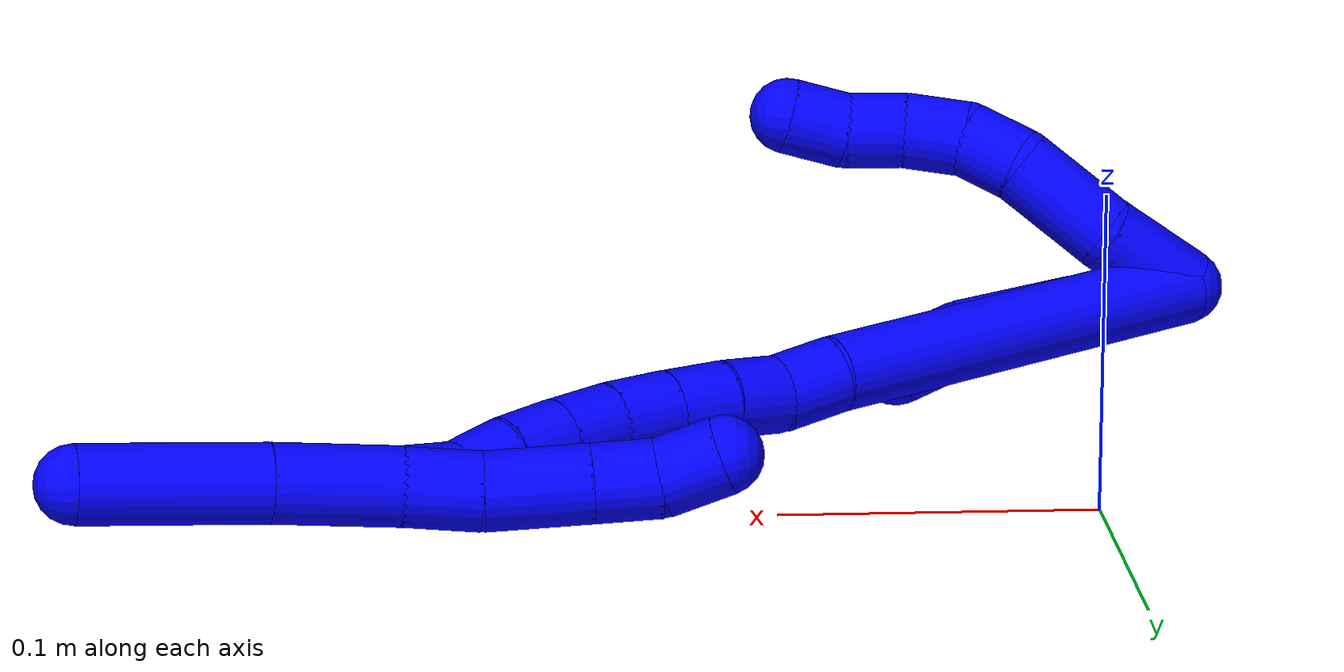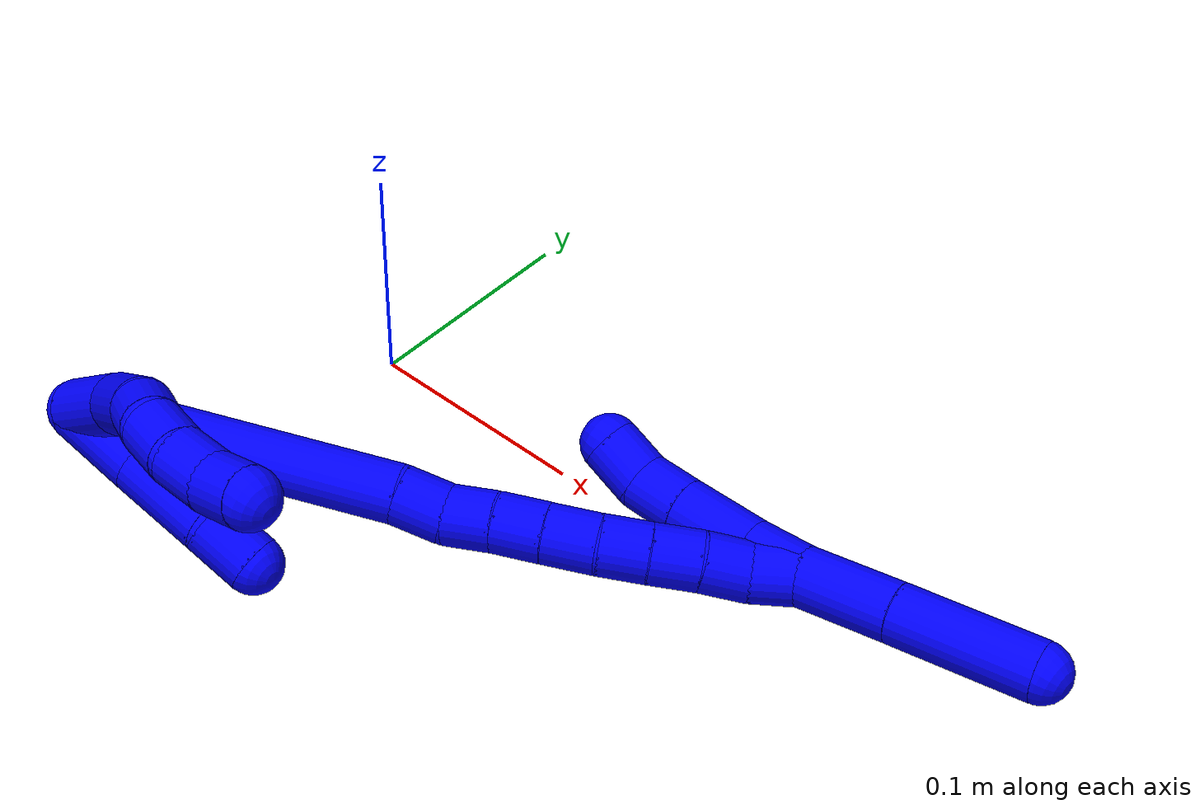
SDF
<sdf version="1.7">
 <world name="default">
  <model name="1">
   <static>0</static>
   <link name="1">
    <collision name="collision-cylinder-e_1_2_8">
     <pose>0.010154 -2.2e-05 -0.013263 3.13991 0.653395 3.13664</pose>
     <geometry><cylinder><radius>0.0125</radius><length>0.033408</length></cylinder></geometry>
     <surface>
      <friction><ode><mu>1.16</mu><mu2>1.16</mu2><slip1>0</slip1><slip2>0</slip2></ode></friction>
      <contact><ode><kp>1e+06</kp><kd>1</kd><max_vel>0</max_vel><min_depth>0.001</min_depth></ode></contact>
     </surface>
    </collision>
    <visual name="visual-cylinder-e_1_2_8">
     <pose>0.010154 -2.2e-05 -0.013263 3.13991 0.653395 3.13664</pose>
     <geometry><cylinder><radius>0.0125</radius><length>0.033408</length></cylinder></geometry>
     <material><ambient>0 0 1 1</ambient></material>
    </visual>
    <collision name="collision-cylinder-e_2_8_9">
     <pose>0.030593 -0.00555 -0.039935 2.75197 0.617085 2.03292</pose>
     <geometry><cylinder><radius>0.0125</radius><length>0.035546</length></cylinder></geometry>
     <surface>
      <friction><ode><mu>1.16</mu><mu2>1.16</mu2><slip1>0</slip1><slip2>0</slip2></ode></friction>
      <contact><ode><kp>1e+06</kp><kd>1</kd><max_vel>0</max_vel><min_depth>0.001</min_depth></ode></contact>
     </surface>
    </collision>
    <visual name="visual-cylinder-e_2_8_9">
     <pose>0.030593 -0.00555 -0.039935 2.75197 0.617085 2.03292</pose>
     <geometry><cylinder><radius>0.0125</radius><length>0.035546</length></cylinder></geometry>
     <material><ambient>0 0 1 1</ambient></material>
    </visual>
    <collision name="collision-cylinder-e_3_9_10">
     <pose>0.04416 -0.015522 -0.061778 2.65465 0.331338 1.18491</pose>
     <geometry><cylinder><radius>0.0125</radius><length>0.020185</length></cylinder></geometry>
     <surface>
      <friction><ode><mu>1.16</mu><mu2>1.16</mu2><slip1>0</slip1><slip2>0</slip2></ode></friction>
      <contact><ode><kp>1e+06</kp><kd>1</kd><max_vel>0</max_vel><min_depth>0.001</min_depth></ode></contact>
     </surface>
    </collision>
    <visual name="visual-cylinder-e_3_9_10">
     <pose>0.04416 -0.015522 -0.061778 2.65465 0.331338 1.18491</pose>
     <geometry><cylinder><radius>0.0125</radius><length>0.020185</length></cylinder></geometry>
     <material><ambient>0 0 1 1</ambient></material>
    </visual>
    <collision name="collision-cylinder-e_4_10_11">
     <pose>0.048526 -0.022333 -0.080315 2.91348 0.10402 0.853071</pose>
     <geometry><cylinder><radius>0.0125</radius><length>0.020855</length></cylinder></geometry>
     <surface>
      <friction><ode><mu>1.16</mu><mu2>1.16</mu2><slip1>0</slip1><slip2>0</slip2></ode></friction>
      <contact><ode><kp>1e+06</kp><kd>1</kd><max_vel>0</max_vel><min_depth>0.001</min_depth></ode></contact>
     </surface>
    </collision>
    <visual name="visual-cylinder-e_4_10_11">
     <pose>0.048526 -0.022333 -0.080315 2.91348 0.10402 0.853071</pose>
     <geometry><cylinder><radius>0.0125</radius><length>0.020855</length></cylinder></geometry>
     <material><ambient>0 0 1 1</ambient></material>
    </visual>
    <collision name="collision-cylinder-e_5_11_12">
     <pose>0.049992 -0.024627 -0.100413 -3.13648 0.038357 -2.87679</pose>
     <geometry><cylinder><radius>0.0125</radius><length>0.020006</length></cylinder></geometry>
     <surface>
      <friction><ode><mu>1.16</mu><mu2>1.16</mu2><slip1>0</slip1><slip2>0</slip2></ode></friction>
      <contact><ode><kp>1e+06</kp><kd>1</kd><max_vel>0</max_vel><min_depth>0.001</min_depth></ode></contact>
     </surface>
    </collision>
    <visual name="visual-cylinder-e_5_11_12">
     <pose>0.049992 -0.024627 -0.100413 -3.13648 0.038357 -2.87679</pose>
     <geometry><cylinder><radius>0.0125</radius><length>0.020006</length></cylinder></geometry>
     <material><ambient>0 0 1 1</ambient></material>
    </visual>
    <collision name="collision-cylinder-e_6_12_6">
     <pose>0.053369 -0.02475 -0.119949 3.12335 0.303952 3.02261</pose>
     <geometry><cylinder><radius>0.0125</radius><length>0.02</length></cylinder></geometry>
     <surface>
      <friction><ode><mu>1.16</mu><mu2>1.16</mu2><slip1>0</slip1><slip2>0</slip2></ode></friction>
      <contact><ode><kp>1e+06</kp><kd>1</kd><max_vel>0</max_vel><min_depth>0.001</min_depth></ode></contact>
     </surface>
    </collision>
    <visual name="visual-cylinder-e_6_12_6">
     <pose>0.053369 -0.02475 -0.119949 3.12335 0.303952 3.02261</pose>
     <geometry><cylinder><radius>0.0125</radius><length>0.02</length></cylinder></geometry>
     <material><ambient>0 0 1 1</ambient></material>
    </visual>
    <collision name="collision-cylinder-e_1_2_13">
     <pose>-0.003343 0.001472 -0.017881 -3.05945 -0.184245 2.30454</pose>
     <geometry><cylinder><radius>0.0125</radius><length>0.0365</length></cylinder></geometry>
     <surface>
      <friction><ode><mu>1.16</mu><mu2>1.16</mu2><slip1>0</slip1><slip2>0</slip2></ode></friction>
      <contact><ode><kp>1e+06</kp><kd>1</kd><max_vel>0</max_vel><min_depth>0.001</min_depth></ode></contact>
     </surface>
    </collision>
    <visual name="visual-cylinder-e_1_2_13">
     <pose>-0.003343 0.001472 -0.017881 -3.05945 -0.184245 2.30454</pose>
     <geometry><cylinder><radius>0.0125</radius><length>0.0365</length></cylinder></geometry>
     <material><ambient>0 0 1 1</ambient></material>
    </visual>
    <collision name="collision-cylinder-e_2_13_14">
     <pose>-0.009776 0.004515 -0.055322 -3.06144 -0.156161 2.19436</pose>
     <geometry><cylinder><radius>0.0125</radius><length>0.03973</length></cylinder></geometry>
     <surface>
      <friction><ode><mu>1.16</mu><mu2>1.16</mu2><slip1>0</slip1><slip2>0</slip2></ode></friction>
      <contact><ode><kp>1e+06</kp><kd>1</kd><max_vel>0</max_vel><min_depth>0.001</min_depth></ode></contact>
     </surface>
    </collision>
    <visual name="visual-cylinder-e_2_13_14">
     <pose>-0.009776 0.004515 -0.055322 -3.06144 -0.156161 2.19436</pose>
     <geometry><cylinder><radius>0.0125</radius><length>0.03973</length></cylinder></geometry>
     <material><ambient>0 0 1 1</ambient></material>
    </visual>
    <collision name="collision-cylinder-e_3_14_5">
     <pose>-0.016782 0.008408 -0.085861 -2.93323 -0.335729 2.0359</pose>
     <geometry><cylinder><radius>0.0125</radius><length>0.02377</length></cylinder></geometry>
     <surface>
      <friction><ode><mu>1.16</mu><mu2>1.16</mu2><slip1>0</slip1><slip2>0</slip2></ode></friction>
      <contact><ode><kp>1e+06</kp><kd>1</kd><max_vel>0</max_vel><min_depth>0.001</min_depth></ode></contact>
     </surface>
    </collision>
    <visual name="visual-cylinder-e_3_14_5">
     <pose>-0.016782 0.008408 -0.085861 -2.93323 -0.335729 2.0359</pose>
     <geometry><cylinder><radius>0.0125</radius><length>0.02377</length></cylinder></geometry>
     <material><ambient>0 0 1 1</ambient></material>
    </visual>
    <collision name="collision-cylinder-e_1_2_15">
     <pose>0.001128 0.032516 -0.059985 -2.64487 0.016531 -0.065163</pose>
     <geometry><cylinder><radius>0.0125</radius><length>0.136481</length></cylinder></geometry>
     <surface>
      <friction><ode><mu>1.16</mu><mu2>1.16</mu2><slip1>0</slip1><slip2>0</slip2></ode></friction>
      <contact><ode><kp>1e+06</kp><kd>1</kd><max_vel>0</max_vel><min_depth>0.001</min_depth></ode></contact>
     </surface>
    </collision>
    <visual name="visual-cylinder-e_1_2_15">
     <pose>0.001128 0.032516 -0.059985 -2.64487 0.016531 -0.065163</pose>
     <geometry><cylinder><radius>0.0125</radius><length>0.136481</length></cylinder></geometry>
     <material><ambient>0 0 1 1</ambient></material>
    </visual>
    <collision name="collision-cylinder-e_2_15_16">
     <pose>0.001126 0.069442 -0.129471 -2.70691 -0.107491 0.477914</pose>
     <geometry><cylinder><radius>0.0125</radius><length>0.02107</length></cylinder></geometry>
     <surface>
      <friction><ode><mu>1.16</mu><mu2>1.16</mu2><slip1>0</slip1><slip2>0</slip2></ode></friction>
      <contact><ode><kp>1e+06</kp><kd>1</kd><max_vel>0</max_vel><min_depth>0.001</min_depth></ode></contact>
     </surface>
    </collision>
    <visual name="visual-cylinder-e_2_15_16">
     <pose>0.001126 0.069442 -0.129471 -2.70691 -0.107491 0.477914</pose>
     <geometry><cylinder><radius>0.0125</radius><length>0.02107</length></cylinder></geometry>
     <material><ambient>0 0 1 1</ambient></material>
    </visual>
    <collision name="collision-cylinder-e_3_16_17">
     <pose>0.001583 0.078564 -0.147709 -2.64716 0.158537 -0.60986</pose>
     <geometry><cylinder><radius>0.0125</radius><length>0.020106</length></cylinder></geometry>
     <surface>
      <friction><ode><mu>1.16</mu><mu2>1.16</mu2><slip1>0</slip1><slip2>0</slip2></ode></friction>
      <contact><ode><kp>1e+06</kp><kd>1</kd><max_vel>0</max_vel><min_depth>0.001</min_depth></ode></contact>
     </surface>
    </collision>
    <visual name="visual-cylinder-e_3_16_17">
     <pose>0.001583 0.078564 -0.147709 -2.64716 0.158537 -0.60986</pose>
     <geometry><cylinder><radius>0.0125</radius><length>0.020106</length></cylinder></geometry>
     <material><ambient>0 0 1 1</ambient></material>
    </visual>
    <collision name="collision-cylinder-e_4_17_18">
     <pose>0.003983 0.087984 -0.165449 -2.65958 0.07989 -0.322397</pose>
     <geometry><cylinder><radius>0.0125</radius><length>0.020384</length></cylinder></geometry>
     <surface>
      <friction><ode><mu>1.16</mu><mu2>1.16</mu2><slip1>0</slip1><slip2>0</slip2></ode></friction>
      <contact><ode><kp>1e+06</kp><kd>1</kd><max_vel>0</max_vel><min_depth>0.001</min_depth></ode></contact>
     </surface>
    </collision>
    <visual name="visual-cylinder-e_4_17_18">
     <pose>0.003983 0.087984 -0.165449 -2.65958 0.07989 -0.322397</pose>
     <geometry><cylinder><radius>0.0125</radius><length>0.020384</length></cylinder></geometry>
     <material><ambient>0 0 1 1</ambient></material>
    </visual>
    <collision name="collision-cylinder-e_5_18_19">
     <pose>0.005445 0.097984 -0.18372 -2.62291 0.060726 -0.227964</pose>
     <geometry><cylinder><radius>0.0125</radius><length>0.021383</length></cylinder></geometry>
     <surface>
      <friction><ode><mu>1.16</mu><mu2>1.16</mu2><slip1>0</slip1><slip2>0</slip2></ode></friction>
      <contact><ode><kp>1e+06</kp><kd>1</kd><max_vel>0</max_vel><min_depth>0.001</min_depth></ode></contact>
     </surface>
    </collision>
    <visual name="visual-cylinder-e_5_18_19">
     <pose>0.005445 0.097984 -0.18372 -2.62291 0.060726 -0.227964</pose>
     <geometry><cylinder><radius>0.0125</radius><length>0.021383</length></cylinder></geometry>
     <material><ambient>0 0 1 1</ambient></material>
    </visual>
    <collision name="collision-cylinder-e_6_19_20">
     <pose>0.006361 0.109059 -0.201166 -2.52591 0.02663 -0.083712</pose>
     <geometry><cylinder><radius>0.0125</radius><length>0.020042</length></cylinder></geometry>
     <surface>
      <friction><ode><mu>1.16</mu><mu2>1.16</mu2><slip1>0</slip1><slip2>0</slip2></ode></friction>
      <contact><ode><kp>1e+06</kp><kd>1</kd><max_vel>0</max_vel><min_depth>0.001</min_depth></ode></contact>
     </surface>
    </collision>
    <visual name="visual-cylinder-e_6_19_20">
     <pose>0.006361 0.109059 -0.201166 -2.52591 0.02663 -0.083712</pose>
     <geometry><cylinder><radius>0.0125</radius><length>0.020042</length></cylinder></geometry>
     <material><ambient>0 0 1 1</ambient></material>
    </visual>
    <collision name="collision-cylinder-e_7_20_21">
     <pose>0.006708 0.121075 -0.217314 -2.47815 0.007911 -0.022966</pose>
     <geometry><cylinder><radius>0.0125</radius><length>0.020234</length></cylinder></geometry>
     <surface>
      <friction><ode><mu>1.16</mu><mu2>1.16</mu2><slip1>0</slip1><slip2>0</slip2></ode></friction>
      <contact><ode><kp>1e+06</kp><kd>1</kd><max_vel>0</max_vel><min_depth>0.001</min_depth></ode></contact>
     </surface>
    </collision>
    <visual name="visual-cylinder-e_7_20_21">
     <pose>0.006708 0.121075 -0.217314 -2.47815 0.007911 -0.022966</pose>
     <geometry><cylinder><radius>0.0125</radius><length>0.020234</length></cylinder></geometry>
     <material><ambient>0 0 1 1</ambient></material>
    </visual>
    <collision name="collision-cylinder-e_8_21_22">
     <pose>0.005782 0.133655 -0.232968 -2.45087 -0.100613 0.278083</pose>
     <geometry><cylinder><radius>0.0125</radius><length>0.020035</length></cylinder></geometry>
     <surface>
      <friction><ode><mu>1.16</mu><mu2>1.16</mu2><slip1>0</slip1><slip2>0</slip2></ode></friction>
      <contact><ode><kp>1e+06</kp><kd>1</kd><max_vel>0</max_vel><min_depth>0.001</min_depth></ode></contact>
     </surface>
    </collision>
    <visual name="visual-cylinder-e_8_21_22">
     <pose>0.005782 0.133655 -0.232968 -2.45087 -0.100613 0.278083</pose>
     <geometry><cylinder><radius>0.0125</radius><length>0.020035</length></cylinder></geometry>
     <material><ambient>0 0 1 1</ambient></material>
    </visual>
    <collision name="collision-cylinder-e_9_22_1">
     <pose>0.006831 0.145375 -0.248992 -2.56962 0.204322 -0.670939</pose>
     <geometry><cylinder><radius>0.0125</radius><length>0.020265</length></cylinder></geometry>
     <surface>
      <friction><ode><mu>1.16</mu><mu2>1.16</mu2><slip1>0</slip1><slip2>0</slip2></ode></friction>
      <contact><ode><kp>1e+06</kp><kd>1</kd><max_vel>0</max_vel><min_depth>0.001</min_depth></ode></contact>
     </surface>
    </collision>
    <visual name="visual-cylinder-e_9_22_1">
     <pose>0.006831 0.145375 -0.248992 -2.56962 0.204322 -0.670939</pose>
     <geometry><cylinder><radius>0.0125</radius><length>0.020265</length></cylinder></geometry>
     <material><ambient>0 0 1 1</ambient></material>
    </visual>
    <collision name="collision-cylinder-e_1_1_23">
     <pose>0.011875 0.15402 -0.277187 -2.97811 0.147411 -1.46711</pose>
     <geometry><cylinder><radius>0.0125</radius><length>0.040682</length></cylinder></geometry>
     <surface>
      <friction><ode><mu>1.16</mu><mu2>1.16</mu2><slip1>0</slip1><slip2>0</slip2></ode></friction>
      <contact><ode><kp>1e+06</kp><kd>1</kd><max_vel>0</max_vel><min_depth>0.001</min_depth></ode></contact>
     </surface>
    </collision>
    <visual name="visual-cylinder-e_1_1_23">
     <pose>0.011875 0.15402 -0.277187 -2.97811 0.147411 -1.46711</pose>
     <geometry><cylinder><radius>0.0125</radius><length>0.040682</length></cylinder></geometry>
     <material><ambient>0 0 1 1</ambient></material>
    </visual>
    <collision name="collision-cylinder-e_2_23_4">
     <pose>0.018392 0.162606 -0.326004 -2.96022 0.119269 -1.16195</pose>
     <geometry><cylinder><radius>0.0125</radius><length>0.059318</length></cylinder></geometry>
     <surface>
      <friction><ode><mu>1.16</mu><mu2>1.16</mu2><slip1>0</slip1><slip2>0</slip2></ode></friction>
      <contact><ode><kp>1e+06</kp><kd>1</kd><max_vel>0</max_vel><min_depth>0.001</min_depth></ode></contact>
     </surface>
    </collision>
    <visual name="visual-cylinder-e_2_23_4">
     <pose>0.018392 0.162606 -0.326004 -2.96022 0.119269 -1.16195</pose>
     <geometry><cylinder><radius>0.0125</radius><length>0.059318</length></cylinder></geometry>
     <material><ambient>0 0 1 1</ambient></material>
    </visual>
    <collision name="collision-cylinder-e_1_1_24">
     <pose>0.007339 0.150397 -0.245183 0.028659 -0.126708 -0.001818</pose>
     <geometry><cylinder><radius>0.0125</radius><length>0.02451</length></cylinder></geometry>
     <surface>
      <friction><ode><mu>1.16</mu><mu2>1.16</mu2><slip1>0</slip1><slip2>0</slip2></ode></friction>
      <contact><ode><kp>1e+06</kp><kd>1</kd><max_vel>0</max_vel><min_depth>0.001</min_depth></ode></contact>
     </surface>
    </collision>
    <visual name="visual-cylinder-e_1_1_24">
     <pose>0.007339 0.150397 -0.245183 0.028659 -0.126708 -0.001818</pose>
     <geometry><cylinder><radius>0.0125</radius><length>0.02451</length></cylinder></geometry>
     <material><ambient>0 0 1 1</ambient></material>
    </visual>
    <collision name="collision-cylinder-e_2_24_25">
     <pose>0.005781 0.148694 -0.216282 0.080677 -0.000536 -2.2e-05</pose>
     <geometry><cylinder><radius>0.0125</radius><length>0.033607</length></cylinder></geometry>
     <surface>
      <friction><ode><mu>1.16</mu><mu2>1.16</mu2><slip1>0</slip1><slip2>0</slip2></ode></friction>
      <contact><ode><kp>1e+06</kp><kd>1</kd><max_vel>0</max_vel><min_depth>0.001</min_depth></ode></contact>
     </surface>
    </collision>
    <visual name="visual-cylinder-e_2_24_25">
     <pose>0.005781 0.148694 -0.216282 0.080677 -0.000536 -2.2e-05</pose>
     <geometry><cylinder><radius>0.0125</radius><length>0.033607</length></cylinder></geometry>
     <material><ambient>0 0 1 1</ambient></material>
    </visual>
    <collision name="collision-cylinder-e_3_25_26">
     <pose>0.005883 0.146667 -0.188999 0.063798 0.010476 0.000334</pose>
     <geometry><cylinder><radius>0.0125</radius><length>0.021113</length></cylinder></geometry>
     <surface>
      <friction><ode><mu>1.16</mu><mu2>1.16</mu2><slip1>0</slip1><slip2>0</slip2></ode></friction>
      <contact><ode><kp>1e+06</kp><kd>1</kd><max_vel>0</max_vel><min_depth>0.001</min_depth></ode></contact>
     </surface>
    </collision>
    <visual name="visual-cylinder-e_3_25_26">
     <pose>0.005883 0.146667 -0.188999 0.063798 0.010476 0.000334</pose>
     <geometry><cylinder><radius>0.0125</radius><length>0.021113</length></cylinder></geometry>
     <material><ambient>0 0 1 1</ambient></material>
    </visual>
    <collision name="collision-cylinder-e_4_26_3">
     <pose>0.009436 0.145968 -0.168667 0.002676 0.337908 0.000456</pose>
     <geometry><cylinder><radius>0.0125</radius><length>0.02077</length></cylinder></geometry>
     <surface>
      <friction><ode><mu>1.16</mu><mu2>1.16</mu2><slip1>0</slip1><slip2>0</slip2></ode></friction>
      <contact><ode><kp>1e+06</kp><kd>1</kd><max_vel>0</max_vel><min_depth>0.001</min_depth></ode></contact>
     </surface>
    </collision>
    <visual name="visual-cylinder-e_4_26_3">
     <pose>0.009436 0.145968 -0.168667 0.002676 0.337908 0.000456</pose>
     <geometry><cylinder><radius>0.0125</radius><length>0.02077</length></cylinder></geometry>
     <material><ambient>0 0 1 1</ambient></material>
    </visual>
    <collision name="collision-sphere-3">
     <pose>0.012879 0.145942 -0.158869 0 -0 0</pose>
     <geometry><sphere><radius>0.0125</radius></sphere></geometry>
     <surface>
      <friction><ode><mu>1.16</mu><mu2>1.16</mu2><slip1>0</slip1><slip2>0</slip2></ode></friction>
      <contact><ode><kp>1e+06</kp><kd>1</kd><max_vel>0</max_vel><min_depth>0.001</min_depth></ode></contact>
     </surface>
    </collision>
    <visual name="visual-sphere-3">
     <pose>0.012879 0.145942 -0.158869 0 -0 0</pose>
     <geometry><sphere><radius>0.0125</radius></sphere></geometry>
     <material><ambient>0 0 1 1</ambient></material>
    </visual>
    <collision name="collision-sphere-26">
     <pose>0.005993 0.145994 -0.178465 0 -0 0</pose>
     <geometry><sphere><radius>0.0125</radius></sphere></geometry>
     <surface>
      <friction><ode><mu>1.16</mu><mu2>1.16</mu2><slip1>0</slip1><slip2>0</slip2></ode></friction>
      <contact><ode><kp>1e+06</kp><kd>1</kd><max_vel>0</max_vel><min_depth>0.001</min_depth></ode></contact>
     </surface>
    </collision>
    <visual name="visual-sphere-26">
     <pose>0.005993 0.145994 -0.178465 0 -0 0</pose>
     <geometry><sphere><radius>0.0125</radius></sphere></geometry>
     <material><ambient>0 0 1 1</ambient></material>
    </visual>
    <collision name="collision-sphere-25">
     <pose>0.005772 0.14734 -0.199534 0 -0 0</pose>
     <geometry><sphere><radius>0.0125</radius></sphere></geometry>
     <surface>
      <friction><ode><mu>1.16</mu><mu2>1.16</mu2><slip1>0</slip1><slip2>0</slip2></ode></friction>
      <contact><ode><kp>1e+06</kp><kd>1</kd><max_vel>0</max_vel><min_depth>0.001</min_depth></ode></contact>
     </surface>
    </collision>
    <visual name="visual-sphere-25">
     <pose>0.005772 0.14734 -0.199534 0 -0 0</pose>
     <geometry><sphere><radius>0.0125</radius></sphere></geometry>
     <material><ambient>0 0 1 1</ambient></material>
    </visual>
    <collision name="collision-sphere-24">
     <pose>0.00579 0.150049 -0.233031 0 -0 0</pose>
     <geometry><sphere><radius>0.0125</radius></sphere></geometry>
     <surface>
      <friction><ode><mu>1.16</mu><mu2>1.16</mu2><slip1>0</slip1><slip2>0</slip2></ode></friction>
      <contact><ode><kp>1e+06</kp><kd>1</kd><max_vel>0</max_vel><min_depth>0.001</min_depth></ode></contact>
     </surface>
    </collision>
    <visual name="visual-sphere-24">
     <pose>0.00579 0.150049 -0.233031 0 -0 0</pose>
     <geometry><sphere><radius>0.0125</radius></sphere></geometry>
     <material><ambient>0 0 1 1</ambient></material>
    </visual>
    <collision name="collision-sphere-4">
     <pose>0.021921 0.167918 -0.354969 0 -0 0</pose>
     <geometry><sphere><radius>0.0125</radius></sphere></geometry>
     <surface>
      <friction><ode><mu>1.16</mu><mu2>1.16</mu2><slip1>0</slip1><slip2>0</slip2></ode></friction>
      <contact><ode><kp>1e+06</kp><kd>1</kd><max_vel>0</max_vel><min_depth>0.001</min_depth></ode></contact>
     </surface>
    </collision>
    <visual name="visual-sphere-4">
     <pose>0.021921 0.167918 -0.354969 0 -0 0</pose>
     <geometry><sphere><radius>0.0125</radius></sphere></geometry>
     <material><ambient>0 0 1 1</ambient></material>
    </visual>
    <collision name="collision-sphere-23">
     <pose>0.014863 0.157295 -0.297039 0 -0 0</pose>
     <geometry><sphere><radius>0.0125</radius></sphere></geometry>
     <surface>
      <friction><ode><mu>1.16</mu><mu2>1.16</mu2><slip1>0</slip1><slip2>0</slip2></ode></friction>
      <contact><ode><kp>1e+06</kp><kd>1</kd><max_vel>0</max_vel><min_depth>0.001</min_depth></ode></contact>
     </surface>
    </collision>
    <visual name="visual-sphere-23">
     <pose>0.014863 0.157295 -0.297039 0 -0 0</pose>
     <geometry><sphere><radius>0.0125</radius></sphere></geometry>
     <material><ambient>0 0 1 1</ambient></material>
    </visual>
    <collision name="collision-sphere-1">
     <pose>0.008887 0.150745 -0.257335 0 -0 0</pose>
     <geometry><sphere><radius>0.0125</radius></sphere></geometry>
     <surface>
      <friction><ode><mu>1.16</mu><mu2>1.16</mu2><slip1>0</slip1><slip2>0</slip2></ode></friction>
      <contact><ode><kp>1e+06</kp><kd>1</kd><max_vel>0</max_vel><min_depth>0.001</min_depth></ode></contact>
     </surface>
    </collision>
    <visual name="visual-sphere-1">
     <pose>0.008887 0.150745 -0.257335 0 -0 0</pose>
     <geometry><sphere><radius>0.0125</radius></sphere></geometry>
     <material><ambient>0 0 1 1</ambient></material>
    </visual>
    <collision name="collision-sphere-22">
     <pose>0.004776 0.140005 -0.24065 0 -0 0</pose>
     <geometry><sphere><radius>0.0125</radius></sphere></geometry>
     <surface>
      <friction><ode><mu>1.16</mu><mu2>1.16</mu2><slip1>0</slip1><slip2>0</slip2></ode></friction>
      <contact><ode><kp>1e+06</kp><kd>1</kd><max_vel>0</max_vel><min_depth>0.001</min_depth></ode></contact>
     </surface>
    </collision>
    <visual name="visual-sphere-22">
     <pose>0.004776 0.140005 -0.24065 0 -0 0</pose>
     <geometry><sphere><radius>0.0125</radius></sphere></geometry>
     <material><ambient>0 0 1 1</ambient></material>
    </visual>
    <collision name="collision-sphere-21">
     <pose>0.006788 0.127305 -0.225285 0 -0 0</pose>
     <geometry><sphere><radius>0.0125</radius></sphere></geometry>
     <surface>
      <friction><ode><mu>1.16</mu><mu2>1.16</mu2><slip1>0</slip1><slip2>0</slip2></ode></friction>
      <contact><ode><kp>1e+06</kp><kd>1</kd><max_vel>0</max_vel><min_depth>0.001</min_depth></ode></contact>
     </surface>
    </collision>
    <visual name="visual-sphere-21">
     <pose>0.006788 0.127305 -0.225285 0 -0 0</pose>
     <geometry><sphere><radius>0.0125</radius></sphere></geometry>
     <material><ambient>0 0 1 1</ambient></material>
    </visual>
    <collision name="collision-sphere-12">
     <pose>0.050376 -0.024576 -0.110409 0 -0 0</pose>
     <geometry><sphere><radius>0.0125</radius></sphere></geometry>
     <surface>
      <friction><ode><mu>1.16</mu><mu2>1.16</mu2><slip1>0</slip1><slip2>0</slip2></ode></friction>
      <contact><ode><kp>1e+06</kp><kd>1</kd><max_vel>0</max_vel><min_depth>0.001</min_depth></ode></contact>
     </surface>
    </collision>
    <visual name="visual-sphere-12">
     <pose>0.050376 -0.024576 -0.110409 0 -0 0</pose>
     <geometry><sphere><radius>0.0125</radius></sphere></geometry>
     <material><ambient>0 0 1 1</ambient></material>
    </visual>
    <collision name="collision-sphere-11">
     <pose>0.049609 -0.024678 -0.090417 0 -0 0</pose>
     <geometry><sphere><radius>0.0125</radius></sphere></geometry>
     <surface>
      <friction><ode><mu>1.16</mu><mu2>1.16</mu2><slip1>0</slip1><slip2>0</slip2></ode></friction>
      <contact><ode><kp>1e+06</kp><kd>1</kd><max_vel>0</max_vel><min_depth>0.001</min_depth></ode></contact>
     </surface>
    </collision>
    <visual name="visual-sphere-11">
     <pose>0.049609 -0.024678 -0.090417 0 -0 0</pose>
     <geometry><sphere><radius>0.0125</radius></sphere></geometry>
     <material><ambient>0 0 1 1</ambient></material>
    </visual>
    <collision name="collision-sphere-10">
     <pose>0.047443 -0.019988 -0.070212 0 -0 0</pose>
     <geometry><sphere><radius>0.0125</radius></sphere></geometry>
     <surface>
      <friction><ode><mu>1.16</mu><mu2>1.16</mu2><slip1>0</slip1><slip2>0</slip2></ode></friction>
      <contact><ode><kp>1e+06</kp><kd>1</kd><max_vel>0</max_vel><min_depth>0.001</min_depth></ode></contact>
     </surface>
    </collision>
    <visual name="visual-sphere-10">
     <pose>0.047443 -0.019988 -0.070212 0 -0 0</pose>
     <geometry><sphere><radius>0.0125</radius></sphere></geometry>
     <material><ambient>0 0 1 1</ambient></material>
    </visual>
    <collision name="collision-sphere-9">
     <pose>0.040877 -0.011056 -0.053344 0 -0 0</pose>
     <geometry><sphere><radius>0.0125</radius></sphere></geometry>
     <surface>
      <friction><ode><mu>1.16</mu><mu2>1.16</mu2><slip1>0</slip1><slip2>0</slip2></ode></friction>
      <contact><ode><kp>1e+06</kp><kd>1</kd><max_vel>0</max_vel><min_depth>0.001</min_depth></ode></contact>
     </surface>
    </collision>
    <visual name="visual-sphere-9">
     <pose>0.040877 -0.011056 -0.053344 0 -0 0</pose>
     <geometry><sphere><radius>0.0125</radius></sphere></geometry>
     <material><ambient>0 0 1 1</ambient></material>
    </visual>
    <collision name="collision-sphere-2">
     <geometry><sphere><radius>0.0125</radius></sphere></geometry>
     <surface>
      <friction><ode><mu>1.16</mu><mu2>1.16</mu2><slip1>0</slip1><slip2>0</slip2></ode></friction>
      <contact><ode><kp>1e+06</kp><kd>1</kd><max_vel>0</max_vel><min_depth>0.001</min_depth></ode></contact>
     </surface>
    </collision>
    <visual name="visual-sphere-2">
     <geometry><sphere><radius>0.0125</radius></sphere></geometry>
     <material><ambient>0 0 1 1</ambient></material>
    </visual>
    <collision name="collision-sphere-19">
     <pose>0.006094 0.103274 -0.192988 0 -0 0</pose>
     <geometry><sphere><radius>0.0125</radius></sphere></geometry>
     <surface>
      <friction><ode><mu>1.16</mu><mu2>1.16</mu2><slip1>0</slip1><slip2>0</slip2></ode></friction>
      <contact><ode><kp>1e+06</kp><kd>1</kd><max_vel>0</max_vel><min_depth>0.001</min_depth></ode></contact>
     </surface>
    </collision>
    <visual name="visual-sphere-19">
     <pose>0.006094 0.103274 -0.192988 0 -0 0</pose>
     <geometry><sphere><radius>0.0125</radius></sphere></geometry>
     <material><ambient>0 0 1 1</ambient></material>
    </visual>
    <collision name="collision-sphere-8">
     <pose>0.020308 -4.5e-05 -0.026527 0 -0 0</pose>
     <geometry><sphere><radius>0.0125</radius></sphere></geometry>
     <surface>
      <friction><ode><mu>1.16</mu><mu2>1.16</mu2><slip1>0</slip1><slip2>0</slip2></ode></friction>
      <contact><ode><kp>1e+06</kp><kd>1</kd><max_vel>0</max_vel><min_depth>0.001</min_depth></ode></contact>
     </surface>
    </collision>
    <visual name="visual-sphere-8">
     <pose>0.020308 -4.5e-05 -0.026527 0 -0 0</pose>
     <geometry><sphere><radius>0.0125</radius></sphere></geometry>
     <material><ambient>0 0 1 1</ambient></material>
    </visual>
    <collision name="collision-sphere-6">
     <pose>0.056362 -0.024924 -0.129489 0 -0 0</pose>
     <geometry><sphere><radius>0.0125</radius></sphere></geometry>
     <surface>
      <friction><ode><mu>1.16</mu><mu2>1.16</mu2><slip1>0</slip1><slip2>0</slip2></ode></friction>
      <contact><ode><kp>1e+06</kp><kd>1</kd><max_vel>0</max_vel><min_depth>0.001</min_depth></ode></contact>
     </surface>
    </collision>
    <visual name="visual-sphere-6">
     <pose>0.056362 -0.024924 -0.129489 0 -0 0</pose>
     <geometry><sphere><radius>0.0125</radius></sphere></geometry>
     <material><ambient>0 0 1 1</ambient></material>
    </visual>
    <collision name="collision-sphere-13">
     <pose>-0.006687 0.002944 -0.035761 0 -0 0</pose>
     <geometry><sphere><radius>0.0125</radius></sphere></geometry>
     <surface>
      <friction><ode><mu>1.16</mu><mu2>1.16</mu2><slip1>0</slip1><slip2>0</slip2></ode></friction>
      <contact><ode><kp>1e+06</kp><kd>1</kd><max_vel>0</max_vel><min_depth>0.001</min_depth></ode></contact>
     </surface>
    </collision>
    <visual name="visual-sphere-13">
     <pose>-0.006687 0.002944 -0.035761 0 -0 0</pose>
     <geometry><sphere><radius>0.0125</radius></sphere></geometry>
     <material><ambient>0 0 1 1</ambient></material>
    </visual>
    <collision name="collision-sphere-14">
     <pose>-0.012866 0.006087 -0.074882 0 -0 0</pose>
     <geometry><sphere><radius>0.0125</radius></sphere></geometry>
     <surface>
      <friction><ode><mu>1.16</mu><mu2>1.16</mu2><slip1>0</slip1><slip2>0</slip2></ode></friction>
      <contact><ode><kp>1e+06</kp><kd>1</kd><max_vel>0</max_vel><min_depth>0.001</min_depth></ode></contact>
     </surface>
    </collision>
    <visual name="visual-sphere-14">
     <pose>-0.012866 0.006087 -0.074882 0 -0 0</pose>
     <geometry><sphere><radius>0.0125</radius></sphere></geometry>
     <material><ambient>0 0 1 1</ambient></material>
    </visual>
    <collision name="collision-sphere-5">
     <pose>-0.020697 0.010729 -0.096839 0 -0 0</pose>
     <geometry><sphere><radius>0.0125</radius></sphere></geometry>
     <surface>
      <friction><ode><mu>1.16</mu><mu2>1.16</mu2><slip1>0</slip1><slip2>0</slip2></ode></friction>
      <contact><ode><kp>1e+06</kp><kd>1</kd><max_vel>0</max_vel><min_depth>0.001</min_depth></ode></contact>
     </surface>
    </collision>
    <visual name="visual-sphere-5">
     <pose>-0.020697 0.010729 -0.096839 0 -0 0</pose>
     <geometry><sphere><radius>0.0125</radius></sphere></geometry>
     <material><ambient>0 0 1 1</ambient></material>
    </visual>
    <collision name="collision-sphere-15">
     <pose>0.002256 0.065031 -0.119971 0 -0 0</pose>
     <geometry><sphere><radius>0.0125</radius></sphere></geometry>
     <surface>
      <friction><ode><mu>1.16</mu><mu2>1.16</mu2><slip1>0</slip1><slip2>0</slip2></ode></friction>
      <contact><ode><kp>1e+06</kp><kd>1</kd><max_vel>0</max_vel><min_depth>0.001</min_depth></ode></contact>
     </surface>
    </collision>
    <visual name="visual-sphere-15">
     <pose>0.002256 0.065031 -0.119971 0 -0 0</pose>
     <geometry><sphere><radius>0.0125</radius></sphere></geometry>
     <material><ambient>0 0 1 1</ambient></material>
    </visual>
    <collision name="collision-sphere-16">
     <pose>-4e-06 0.073853 -0.138971 0 -0 0</pose>
     <geometry><sphere><radius>0.0125</radius></sphere></geometry>
     <surface>
      <friction><ode><mu>1.16</mu><mu2>1.16</mu2><slip1>0</slip1><slip2>0</slip2></ode></friction>
      <contact><ode><kp>1e+06</kp><kd>1</kd><max_vel>0</max_vel><min_depth>0.001</min_depth></ode></contact>
     </surface>
    </collision>
    <visual name="visual-sphere-16">
     <pose>-4e-06 0.073853 -0.138971 0 -0 0</pose>
     <geometry><sphere><radius>0.0125</radius></sphere></geometry>
     <material><ambient>0 0 1 1</ambient></material>
    </visual>
    <collision name="collision-sphere-17">
     <pose>0.00317 0.083274 -0.156447 0 -0 0</pose>
     <geometry><sphere><radius>0.0125</radius></sphere></geometry>
     <surface>
      <friction><ode><mu>1.16</mu><mu2>1.16</mu2><slip1>0</slip1><slip2>0</slip2></ode></friction>
      <contact><ode><kp>1e+06</kp><kd>1</kd><max_vel>0</max_vel><min_depth>0.001</min_depth></ode></contact>
     </surface>
    </collision>
    <visual name="visual-sphere-17">
     <pose>0.00317 0.083274 -0.156447 0 -0 0</pose>
     <geometry><sphere><radius>0.0125</radius></sphere></geometry>
     <material><ambient>0 0 1 1</ambient></material>
    </visual>
    <collision name="collision-sphere-18">
     <pose>0.004797 0.092694 -0.174451 0 -0 0</pose>
     <geometry><sphere><radius>0.0125</radius></sphere></geometry>
     <surface>
      <friction><ode><mu>1.16</mu><mu2>1.16</mu2><slip1>0</slip1><slip2>0</slip2></ode></friction>
      <contact><ode><kp>1e+06</kp><kd>1</kd><max_vel>0</max_vel><min_depth>0.001</min_depth></ode></contact>
     </surface>
    </collision>
    <visual name="visual-sphere-18">
     <pose>0.004797 0.092694 -0.174451 0 -0 0</pose>
     <geometry><sphere><radius>0.0125</radius></sphere></geometry>
     <material><ambient>0 0 1 1</ambient></material>
    </visual>
    <collision name="collision-sphere-20">
     <pose>0.006628 0.114845 -0.209344 0 -0 0</pose>
     <geometry><sphere><radius>0.0125</radius></sphere></geometry>
     <surface>
      <friction><ode><mu>1.16</mu><mu2>1.16</mu2><slip1>0</slip1><slip2>0</slip2></ode></friction>
      <contact><ode><kp>1e+06</kp><kd>1</kd><max_vel>0</max_vel><min_depth>0.001</min_depth></ode></contact>
     </surface>
    </collision>
    <visual name="visual-sphere-20">
     <pose>0.006628 0.114845 -0.209344 0 -0 0</pose>
     <geometry><sphere><radius>0.0125</radius></sphere></geometry>
     <material><ambient>0 0 1 1</ambient></material>
    </visual>
    <inertial>
     <pose>0.010242 0.06776 -0.13973 0 -0 0</pose>
     <mass>0.75</mass>
     <inertia>
      <ixx>0.000212</ixx>
      <ixy>0</ixy>
      <ixz>0</ixz>
      <iyy>-0.000192</iyy>
      <iyz>0</iyz>
      <izz>-0.000162</izz>
     </inertia>
    </inertial>
   </link>
   <pose>-0.045892 -0.131735 0.03682 -1.34717 -1.4176 1.31611</pose>
  </model>
 </world>
</sdf>
